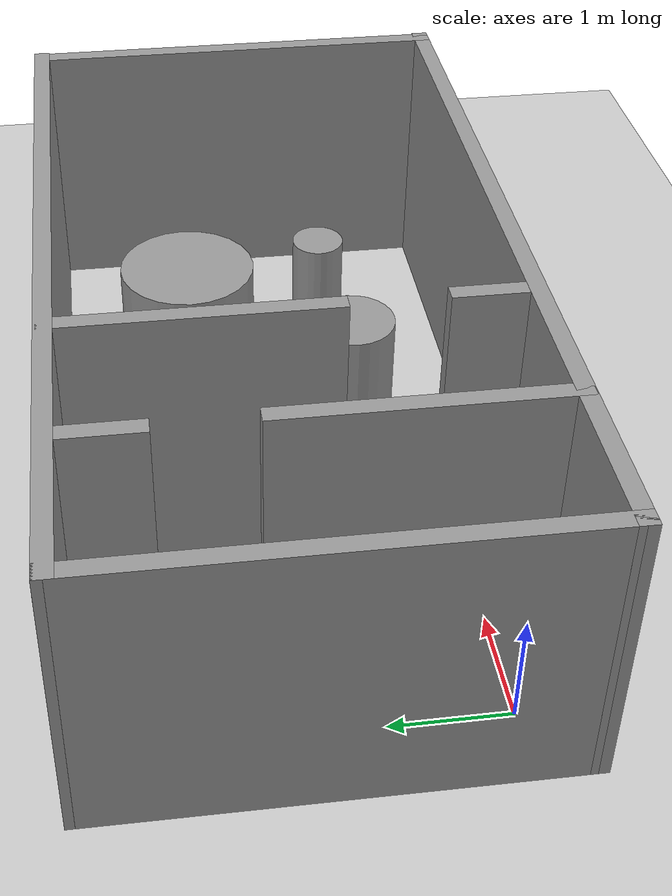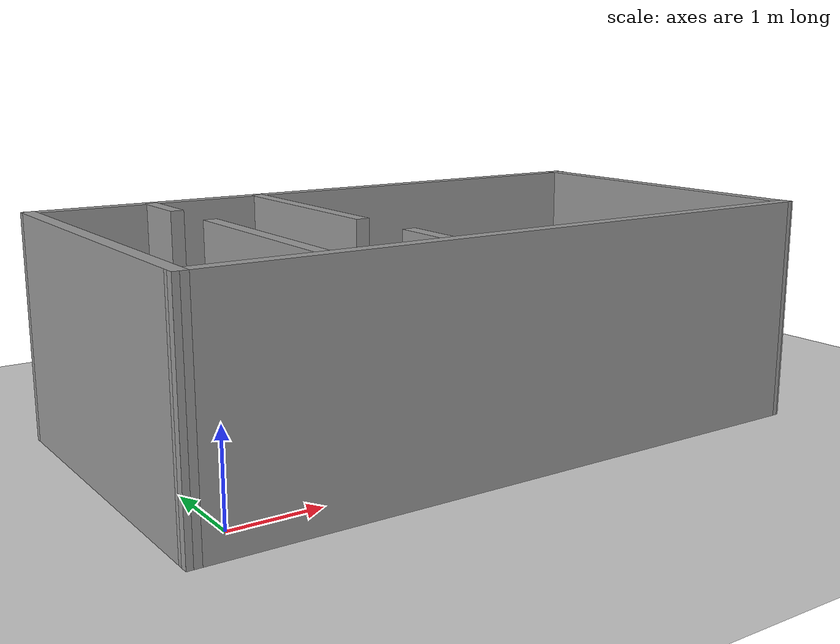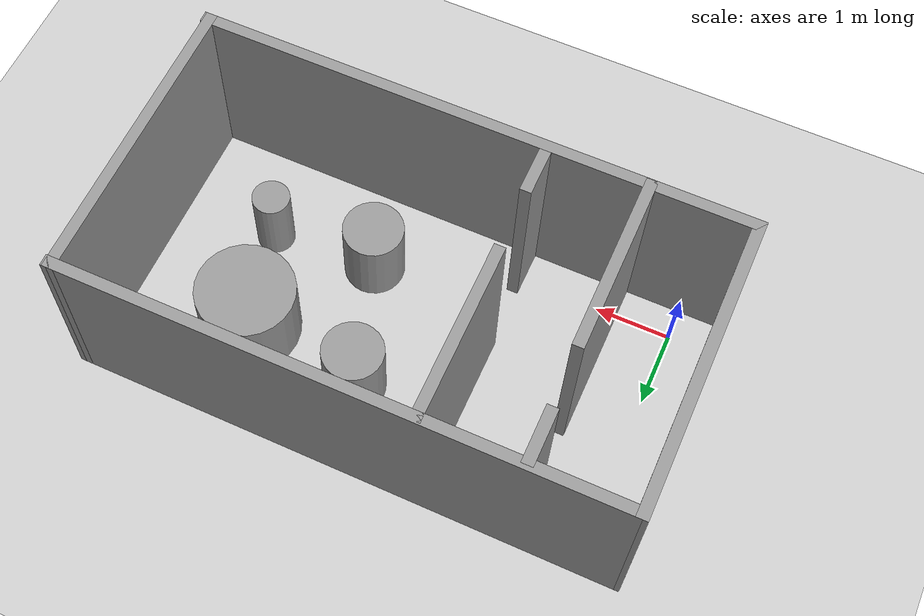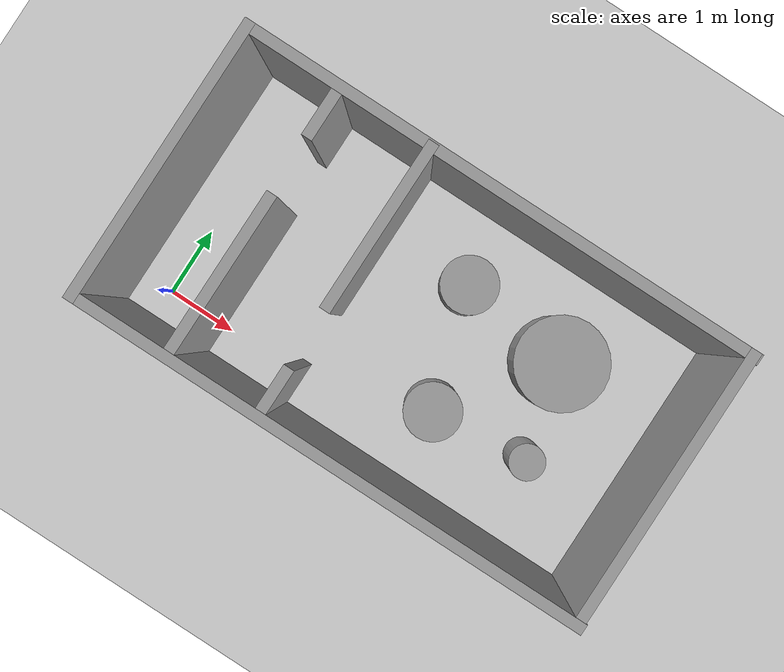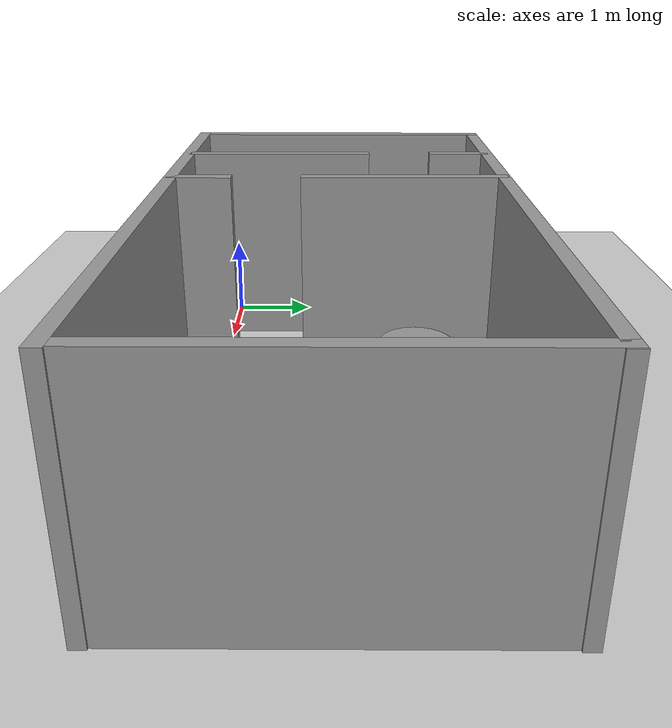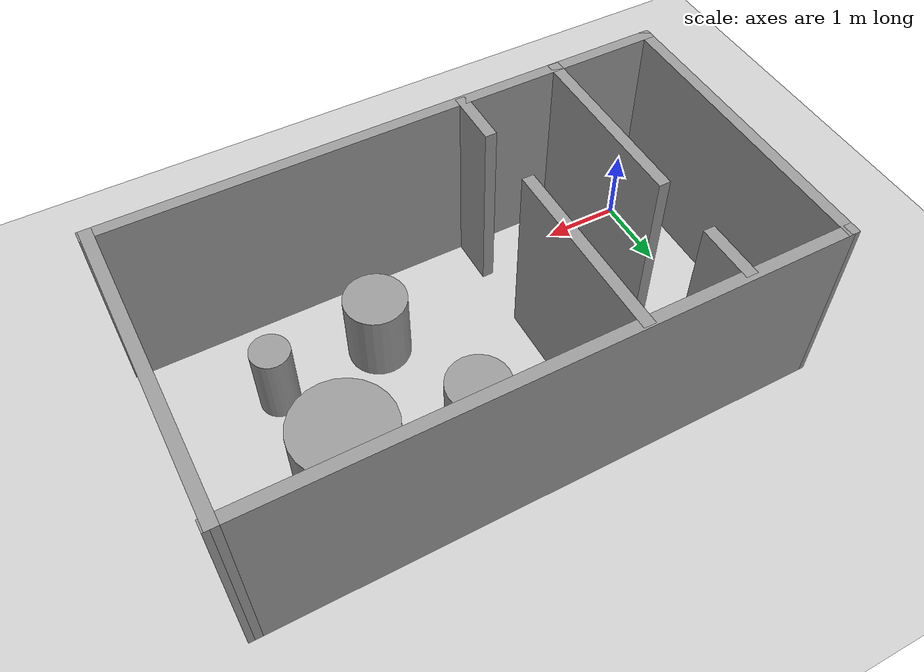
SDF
<sdf version="1.7">
 <world name="default">
  <light name="sun" type="directional">
   <pose>0 0 10 0 -0 0</pose>
   <diffuse>0.8 0.8 0.8 1</diffuse>
   <specular>0.2 0.2 0.2 1</specular>
   <attenuation>
    <range>1000</range>
    <constant>0.9</constant>
    <linear>0.01</linear>
    <quadratic>0.001</quadratic>
   </attenuation>
   <direction>-0.5 0.1 -0.9</direction>
   <spot><inner_angle>0</inner_angle><outer_angle>0</outer_angle><falloff>0</falloff></spot>
  </light>
  <model name="ground_plane">
   <static>1</static>
   <link name="link">
    <collision name="collision">
     <geometry><plane><normal>0 0 1</normal><size>100 100</size></plane></geometry>
     <surface>
      <contact><collide_bitmask>65535</collide_bitmask></contact>
      <friction><ode><mu>100</mu><mu2>50</mu2></ode></friction>
     </surface>
    </collision>
    <visual name="visual">
     <cast_shadows>0</cast_shadows>
     <geometry><plane><normal>0 0 1</normal><size>100 100</size></plane></geometry>
     <material>
      <script><uri>file://media/materials/scripts/gazebo.material</uri><name>Gazebo/Grey</name></script>
     </material>
    </visual>
   </link>
  </model>
  <gravity>0 0 -9.8</gravity>
  <magnetic_field>6e-06 2.3e-05 -4.2e-05</magnetic_field>
  <atmosphere type="adiabatic"/>
  <physics type="ode">
   <max_step_size>0.001</max_step_size>
   <real_time_factor>1</real_time_factor>
   <real_time_update_rate>1000</real_time_update_rate>
  </physics>
  <scene><ambient>0.4 0.4 0.4 1</ambient><background>0.7 0.7 0.7 1</background><shadows>1</shadows></scene>
  <spherical_coordinates>
   <surface_model>EARTH_WGS84</surface_model>
   <latitude_deg>0</latitude_deg>
   <longitude_deg>0</longitude_deg>
   <elevation>0</elevation>
   <heading_deg>0</heading_deg>
  </spherical_coordinates>
  <model name="Untitled">
   <pose>4 2.2 0 0 -0 0</pose>
   <link name="Wall_0">
    <collision name="Wall_0_Collision">
     <geometry><box><size>4 0.15 2.5</size></box></geometry>
     <pose>0 0 1.25 0 -0 0</pose>
    </collision>
    <visual name="Wall_0_Visual">
     <pose>0 0 1.25 0 -0 0</pose>
     <geometry><box><size>4 0.15 2.5</size></box></geometry>
     <material>
      <script><uri>file://media/materials/scripts/gazebo.material</uri><name>Gazebo/Grey</name></script>
      <ambient>1 1 1 1</ambient>
     </material>
     <meta><layer>0</layer></meta>
    </visual>
    <pose>-4.54278 -0.762363 0 0 -0 -1.5708</pose>
   </link>
   <link name="Wall_1">
    <collision name="Wall_1_Collision">
     <geometry><box><size>7.39943 0.15 2.5</size></box></geometry>
     <pose>0 0 1.25 0 -0 0</pose>
    </collision>
    <visual name="Wall_1_Visual">
     <pose>0 0 1.25 0 -0 0</pose>
     <geometry><box><size>7.39943 0.15 2.5</size></box></geometry>
     <material>
      <script><uri>file://media/materials/scripts/gazebo.material</uri><name>Gazebo/Grey</name></script>
      <ambient>1 1 1 1</ambient>
     </material>
     <meta><layer>0</layer></meta>
    </visual>
    <pose>-0.918061 -2.68452 0 0 -0 0.000783</pose>
   </link>
   <link name="Wall_10">
    <collision name="Wall_10_Collision">
     <geometry><box><size>2.4 0.15 2.5</size></box></geometry>
     <pose>0 0 1.25 0 -0 0</pose>
    </collision>
    <visual name="Wall_10_Visual">
     <pose>0 0 1.25 0 -0 0</pose>
     <geometry><box><size>2.4 0.15 2.5</size></box></geometry>
     <material>
      <script><uri>file://media/materials/scripts/gazebo.material</uri><name>Gazebo/Grey</name></script>
      <ambient>1 1 1 1</ambient>
     </material>
     <meta><layer>0</layer></meta>
    </visual>
    <pose>-1.9079 0.017524 0 0 -0 -1.5708</pose>
   </link>
   <link name="Wall_13">
    <collision name="Wall_13_Collision">
     <geometry><box><size>0.75 0.15 2.5</size></box></geometry>
     <pose>0 0 1.25 0 -0 0</pose>
    </collision>
    <visual name="Wall_13_Visual">
     <pose>0 0 1.25 0 -0 0</pose>
     <geometry><box><size>0.75 0.15 2.5</size></box></geometry>
     <material>
      <script><uri>file://media/materials/scripts/gazebo.material</uri><name>Gazebo/Grey</name></script>
      <ambient>1 1 1 1</ambient>
     </material>
     <meta><layer>0</layer></meta>
    </visual>
    <pose>-1.88779 -2.35894 0 0 -0 1.5708</pose>
   </link>
   <link name="Wall_2">
    <collision name="Wall_2_Collision">
     <geometry><box><size>4 0.15 2.5</size></box></geometry>
     <pose>0 0 1.25 0 -0 0</pose>
    </collision>
    <visual name="Wall_2_Visual">
     <pose>0 0 1.25 0 -0 0</pose>
     <geometry><box><size>4 0.15 2.5</size></box></geometry>
     <material>
      <script><uri>file://media/materials/scripts/gazebo.material</uri><name>Gazebo/Grey</name></script>
      <ambient>1 1 1 1</ambient>
     </material>
     <meta><layer>0</layer></meta>
    </visual>
    <pose>2.68654 -0.756684 0 0 -0 1.5708</pose>
   </link>
   <link name="Wall_3">
    <collision name="Wall_3_Collision">
     <geometry><box><size>7.39943 0.15 2.5</size></box></geometry>
     <pose>0 0 1.25 0 -0 0</pose>
    </collision>
    <visual name="Wall_3_Visual">
     <pose>0 0 1.25 0 -0 0</pose>
     <geometry><box><size>7.39943 0.15 2.5</size></box></geometry>
     <material>
      <script><uri>file://media/materials/scripts/gazebo.material</uri><name>Gazebo/Grey</name></script>
      <ambient>1 1 1 1</ambient>
     </material>
     <meta><layer>0</layer></meta>
    </visual>
    <pose>-0.918061 1.16548 0 0 -0 -3.14081</pose>
   </link>
   <link name="Wall_5">
    <collision name="Wall_5_Collision">
     <geometry><box><size>0.75 0.15 2.5</size></box></geometry>
     <pose>0 0 1.25 0 -0 0</pose>
    </collision>
    <visual name="Wall_5_Visual">
     <pose>0 0 1.25 0 -0 0</pose>
     <geometry><box><size>0.75 0.15 2.5</size></box></geometry>
     <material>
      <script><uri>file://media/materials/scripts/gazebo.material</uri><name>Gazebo/Grey</name></script>
      <ambient>1 1 1 1</ambient>
     </material>
     <meta><layer>0</layer></meta>
    </visual>
    <pose>-3.21528 0.802296 0 0 -0 -1.5708</pose>
   </link>
   <link name="Wall_8">
    <collision name="Wall_8_Collision">
     <geometry><box><size>2.4 0.15 2.5</size></box></geometry>
     <pose>0 0 1.25 0 -0 0</pose>
    </collision>
    <visual name="Wall_8_Visual">
     <pose>0 0 1.25 0 -0 0</pose>
     <geometry><box><size>2.4 0.15 2.5</size></box></geometry>
     <material>
      <script><uri>file://media/materials/scripts/gazebo.material</uri><name>Gazebo/Grey</name></script>
      <ambient>1 1 1 1</ambient>
     </material>
     <meta><layer>0</layer></meta>
    </visual>
    <pose>-3.19517 -1.55405 0 0 -0 1.5708</pose>
   </link>
   <static>1</static>
  </model>
  <model name="unit_cylinder_2">
   <link name="link">
    <inertial>
     <mass>1</mass>
     <inertia><ixx>0.145833</ixx><ixy>0</ixy><ixz>0</ixz><iyy>0.145833</iyy><iyz>0</iyz><izz>0.125</izz></inertia>
    </inertial>
    <visual name="visual">
     <geometry><cylinder><radius>0.25</radius><length>1</length></cylinder></geometry>
     <material>
      <script><name>Gazebo/Grey</name><uri>file://media/materials/scripts/gazebo.material</uri></script>
      <shader type="pixel"><normal_map>__default__</normal_map></shader>
      <ambient>0.3 0.3 0.3 1</ambient>
      <diffuse>0.7 0.7 0.7 1</diffuse>
      <specular>0.01 0.01 0.01 1</specular>
      <emissive>0 0 0 1</emissive>
     </material>
    </visual>
    <collision name="collision">
     <geometry><cylinder><radius>0.25</radius><length>1</length></cylinder></geometry>
     <surface>
      <friction>
       <ode><mu>1</mu><mu2>1</mu2><fdir1>0 0 0</fdir1><slip1>0</slip1><slip2>0</slip2></ode>
       <torsional>
        <coefficient>1</coefficient>
        <patch_radius>0</patch_radius>
        <surface_radius>0</surface_radius>
        <use_patch_radius>1</use_patch_radius>
        <ode><slip>0</slip></ode>
       </torsional>
      </friction>
      <bounce><restitution_coefficient>0</restitution_coefficient><threshold>1e+06</threshold></bounce>
      <contact>
       <collide_without_contact>0</collide_without_contact>
       <collide_without_contact_bitmask>1</collide_without_contact_bitmask>
       <collide_bitmask>1</collide_bitmask>
       <ode>
        <soft_cfm>0</soft_cfm>
        <soft_erp>0.2</soft_erp>
        <kp>1e+13</kp>
        <kd>1</kd>
        <max_vel>0.01</max_vel>
        <min_depth>0</min_depth>
       </ode>
       <bullet>
        <split_impulse>1</split_impulse>
        <split_impulse_penetration_threshold>-0.01</split_impulse_penetration_threshold>
        <soft_cfm>0</soft_cfm>
        <soft_erp>0.2</soft_erp>
        <kp>1e+13</kp>
        <kd>1</kd>
       </bullet>
      </contact>
     </surface>
    </collision>
   </link>
   <static>0</static>
   <pose>5.32259 0.761051 0.5 0 -0 0</pose>
  </model>
  <model name="unit_cylinder_0">
   <link name="link">
    <inertial>
     <mass>1</mass>
     <inertia><ixx>0.145833</ixx><ixy>0</ixy><ixz>0</ixz><iyy>0.145833</iyy><iyz>0</iyz><izz>0.125</izz></inertia>
    </inertial>
    <visual name="visual">
     <geometry><cylinder><radius>0.4</radius><length>1</length></cylinder></geometry>
     <material>
      <script><name>Gazebo/Grey</name><uri>file://media/materials/scripts/gazebo.material</uri></script>
      <shader type="pixel"><normal_map>__default__</normal_map></shader>
      <ambient>0.3 0.3 0.3 1</ambient>
      <diffuse>0.7 0.7 0.7 1</diffuse>
      <specular>0.01 0.01 0.01 1</specular>
      <emissive>0 0 0 1</emissive>
     </material>
    </visual>
    <collision name="collision">
     <geometry><cylinder><radius>0.4</radius><length>1</length></cylinder></geometry>
     <surface>
      <friction>
       <ode><mu>1</mu><mu2>1</mu2><fdir1>0 0 0</fdir1><slip1>0</slip1><slip2>0</slip2></ode>
       <torsional>
        <coefficient>1</coefficient>
        <patch_radius>0</patch_radius>
        <surface_radius>0</surface_radius>
        <use_patch_radius>1</use_patch_radius>
        <ode><slip>0</slip></ode>
       </torsional>
      </friction>
      <bounce><restitution_coefficient>0</restitution_coefficient><threshold>1e+06</threshold></bounce>
      <contact>
       <collide_without_contact>0</collide_without_contact>
       <collide_without_contact_bitmask>1</collide_without_contact_bitmask>
       <collide_bitmask>1</collide_bitmask>
       <ode>
        <soft_cfm>0</soft_cfm>
        <soft_erp>0.2</soft_erp>
        <kp>1e+13</kp>
        <kd>1</kd>
        <max_vel>0.01</max_vel>
        <min_depth>0</min_depth>
       </ode>
       <bullet>
        <split_impulse>1</split_impulse>
        <split_impulse_penetration_threshold>-0.01</split_impulse_penetration_threshold>
        <soft_cfm>0</soft_cfm>
        <soft_erp>0.2</soft_erp>
        <kp>1e+13</kp>
        <kd>1</kd>
       </bullet>
      </contact>
     </surface>
    </collision>
   </link>
   <static>0</static>
   <pose>3.91883 0.638296 0.499997 3e-06 4e-06 -0</pose>
  </model>
  <model name="unit_cylinder">
   <link name="link">
    <inertial>
     <mass>1</mass>
     <inertia><ixx>0.145833</ixx><ixy>0</ixy><ixz>0</ixz><iyy>0.145833</iyy><iyz>0</iyz><izz>0.125</izz></inertia>
    </inertial>
    <visual name="visual">
     <geometry><cylinder><radius>0.4</radius><length>1</length></cylinder></geometry>
     <material>
      <script><name>Gazebo/Grey</name><uri>file://media/materials/scripts/gazebo.material</uri></script>
      <shader type="pixel"><normal_map>__default__</normal_map></shader>
      <ambient>0.3 0.3 0.3 1</ambient>
      <diffuse>0.7 0.7 0.7 1</diffuse>
      <specular>0.01 0.01 0.01 1</specular>
      <emissive>0 0 0 1</emissive>
     </material>
    </visual>
    <collision name="collision">
     <geometry><cylinder><radius>0.4</radius><length>1</length></cylinder></geometry>
     <surface>
      <friction>
       <ode><mu>1</mu><mu2>1</mu2><fdir1>0 0 0</fdir1><slip1>0</slip1><slip2>0</slip2></ode>
       <torsional>
        <coefficient>1</coefficient>
        <patch_radius>0</patch_radius>
        <surface_radius>0</surface_radius>
        <use_patch_radius>1</use_patch_radius>
        <ode><slip>0</slip></ode>
       </torsional>
      </friction>
      <bounce><restitution_coefficient>0</restitution_coefficient><threshold>1e+06</threshold></bounce>
      <contact>
       <collide_without_contact>0</collide_without_contact>
       <collide_without_contact_bitmask>1</collide_without_contact_bitmask>
       <collide_bitmask>1</collide_bitmask>
       <ode>
        <soft_cfm>0</soft_cfm>
        <soft_erp>0.2</soft_erp>
        <kp>1e+13</kp>
        <kd>1</kd>
        <max_vel>0.01</max_vel>
        <min_depth>0</min_depth>
       </ode>
       <bullet>
        <split_impulse>1</split_impulse>
        <split_impulse_penetration_threshold>-0.01</split_impulse_penetration_threshold>
        <soft_cfm>0</soft_cfm>
        <soft_erp>0.2</soft_erp>
        <kp>1e+13</kp>
        <kd>1</kd>
       </bullet>
      </contact>
     </surface>
    </collision>
   </link>
   <static>0</static>
   <pose>3.41285 2.30233 0.499993 -3e-06 -3e-06 0</pose>
  </model>
  <model name="unit_cylinder_1">
   <link name="link">
    <inertial>
     <mass>1</mass>
     <inertia><ixx>0.145833</ixx><ixy>0</ixy><ixz>0</ixz><iyy>0.145833</iyy><iyz>0</iyz><izz>0.125</izz></inertia>
    </inertial>
    <visual name="visual">
     <geometry><cylinder><radius>0.65</radius><length>1</length></cylinder></geometry>
     <material>
      <script><name>Gazebo/Grey</name><uri>file://media/materials/scripts/gazebo.material</uri></script>
      <shader type="pixel"><normal_map>__default__</normal_map></shader>
      <ambient>0.3 0.3 0.3 1</ambient>
      <diffuse>0.7 0.7 0.7 1</diffuse>
      <specular>0.01 0.01 0.01 1</specular>
      <emissive>0 0 0 1</emissive>
     </material>
    </visual>
    <collision name="collision">
     <geometry><cylinder><radius>0.65</radius><length>1</length></cylinder></geometry>
     <surface>
      <friction>
       <ode><mu>1</mu><mu2>1</mu2><fdir1>0 0 0</fdir1><slip1>0</slip1><slip2>0</slip2></ode>
       <torsional>
        <coefficient>1</coefficient>
        <patch_radius>0</patch_radius>
        <surface_radius>0</surface_radius>
        <use_patch_radius>1</use_patch_radius>
        <ode><slip>0</slip></ode>
       </torsional>
      </friction>
      <bounce><restitution_coefficient>0</restitution_coefficient><threshold>1e+06</threshold></bounce>
      <contact>
       <collide_without_contact>0</collide_without_contact>
       <collide_without_contact_bitmask>1</collide_without_contact_bitmask>
       <collide_bitmask>1</collide_bitmask>
       <ode>
        <soft_cfm>0</soft_cfm>
        <soft_erp>0.2</soft_erp>
        <kp>1e+13</kp>
        <kd>1</kd>
        <max_vel>0.01</max_vel>
        <min_depth>0</min_depth>
       </ode>
       <bullet>
        <split_impulse>1</split_impulse>
        <split_impulse_penetration_threshold>-0.01</split_impulse_penetration_threshold>
        <soft_cfm>0</soft_cfm>
        <soft_erp>0.2</soft_erp>
        <kp>1e+13</kp>
        <kd>1</kd>
       </bullet>
      </contact>
     </surface>
    </collision>
   </link>
   <static>0</static>
   <pose>5 2.1 0.499993 -4e-06 -4e-06 -0</pose>
  </model>
 </world>
</sdf>
